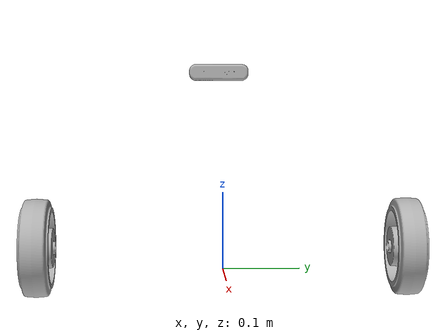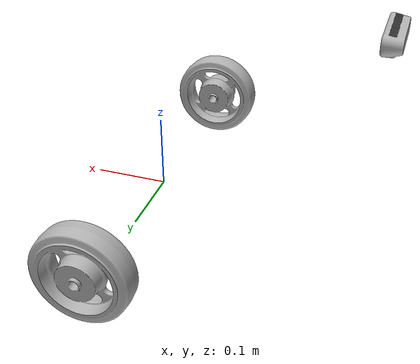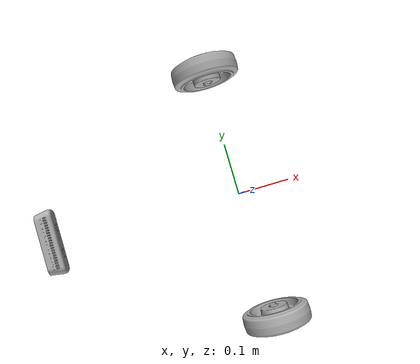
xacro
<?xml version="1.0" ?>
<robot name="robot" xmlns:xacro="http://www.ros.org/wiki/xacro">

<xacro:include filename="$(find robot_description)/urdf/materials.xacro" />
<xacro:include filename="$(find robot_description)/urdf/robot.trans" />
<xacro:include filename="$(find robot_description)/gazebo/robot_plugins.gazebo" />
<link name="base_link">
  <inertial>
    <origin xyz="-0.005302226425128791 -0.0022983537829343297 0.09401485302570205" rpy="0 0 0"/>
    <mass value="24.75013088334115"/>
    <inertia ixx="0.563455" iyy="0.715606" izz="1.030558" ixy="-0.005287" iyz="0.003318" ixz="0.008679"/>
  </inertial>
  <visual>
    <origin xyz="0 0 0" rpy="0 0 0"/>
    <geometry>
      <mesh filename="file://$(find robot_description)/meshes/base_link.stl" scale="0.001 0.001 0.001"/>
    </geometry>
    <material name="silver"/>
  </visual>
  <collision>
    <origin xyz="0 0 0" rpy="0 0 0"/>
    <geometry>
      <mesh filename="file://$(find robot_description)/meshes/base_link.stl" scale="0.001 0.001 0.001"/>
    </geometry>
  </collision>
</link>

<link name="wheel_left_1">
  <inertial>
    <origin xyz="3.828934417079294e-07 -0.023475397336640502 -3.022445128654516e-07" rpy="0 0 0"/>
    <mass value="2.2573668510801816"/>
    <inertia ixx="0.002744" iyy="0.005023" izz="0.002744" ixy="-0.0" iyz="-0.0" ixz="-0.0"/>
  </inertial>
  <visual>
    <origin xyz="0.000385 0.216178 -0.028568" rpy="0 0 0"/>
    <geometry>
      <mesh filename="file://$(find robot_description)/meshes/wheel_left_1.stl" scale="0.001 0.001 0.001"/>
    </geometry>
    <material name="silver"/>
  </visual>
  <collision>
    <origin xyz="0.000385 0.216178 -0.028568" rpy="0 0 0"/>
    <geometry>
      <mesh filename="file://$(find robot_description)/meshes/wheel_left_1.stl" scale="0.001 0.001 0.001"/>
    </geometry>
  </collision>
</link>

<link name="wheel_right_1">
  <inertial>
    <origin xyz="1.5484708396193338e-07 0.023474886620335506 -3.02244513264438e-07" rpy="0 0 0"/>
    <mass value="2.2573668510801825"/>
    <inertia ixx="0.002744" iyy="0.005023" izz="0.002744" ixy="0.0" iyz="-0.0" ixz="-0.0"/>
  </inertial>
  <visual>
    <origin xyz="0.000329 -0.216403 -0.028568" rpy="0 0 0"/>
    <geometry>
      <mesh filename="file://$(find robot_description)/meshes/wheel_right_1.stl" scale="0.001 0.001 0.001"/>
    </geometry>
    <material name="silver"/>
  </visual>
  <collision>
    <origin xyz="0.000329 -0.216403 -0.028568" rpy="0 0 0"/>
    <geometry>
      <mesh filename="file://$(find robot_description)/meshes/wheel_right_1.stl" scale="0.001 0.001 0.001"/>
    </geometry>
  </collision>
</link>

<link name="robot/base_link/realsense">
  <inertial>
    <origin xyz="0.034156087707450974 0.006811411779674115 0.033424133532492684" rpy="0 0 1.57"/>
    <mass value="1.2360865195081703"/>
    <inertia ixx="0.000634" iyy="0.001022" izz="0.001067" ixy="-1e-06" iyz="-0.0" ixz="-0.000132"/>
  </inertial>
  <visual>
    <origin xyz="0.034156087707450974 0.006811411779674115 0.033424133532492684" rpy="0 0 1.57"/>
    <geometry>
      <mesh filename="file://$(find robot_description)/meshes/RealSense_1.stl" scale="0.001 0.001 0.001"/>
    </geometry>
    <material name="silver"/>
  </visual>
  <collision>
    <origin xyz="0.034156087707450974 0.006811411779674115 0.033424133532492684" rpy="0 0 1.57"/>
    <geometry>
      <mesh filename="file://$(find robot_description)/meshes/RealSense_1.stl" scale="0.001 0.001 0.001"/>
    </geometry>
  </collision>
</link>

<link name="camera_L">
</link>

<link name="camera_R">
</link>

<joint name="Revolute 3" type="continuous">
  <origin xyz="-0.000385 -0.216178 0.028568" rpy="0 0 0"/>
  <parent link="base_link"/>
  <child link="wheel_left_1"/>
  <axis xyz="0.0 -1.0 0.0"/>
</joint>

<joint name="Revolute 4" type="continuous">
  <origin xyz="-0.000329 0.216403 0.028568" rpy="0 0 0"/>
  <parent link="base_link"/>
  <child link="wheel_right_1"/>
  <axis xyz="-0.0 -1.0 -0.0"/>
</joint>

<joint name="RealSense" type="fixed">
  <origin xyz="0.0 0.0 0.0" rpy="0 0 0"/>
  <parent link="base_link"/>
  <child link="robot/base_link/realsense"/>
</joint>

<joint name="Camera_R" type="fixed">
  <origin xyz="-0.125858 0.0375 0.146059" rpy="0 0 3.14"/>
  <parent link="robot/base_link/realsense"/>
  <child link="camera_R"/>
</joint>

<joint name="Camera_L" type="fixed">
  <origin xyz="-0.125858 -0.052506 0.146059" rpy="0 0 3.14"/>
  <parent link="robot/base_link/realsense"/>
  <child link="camera_L"/>
</joint>

</robot>

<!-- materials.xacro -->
<robot name="robot" xmlns:xacro="http://www.ros.org/wiki/xacro" >

<material name="silver">
  <color rgba="0.700 0.700 0.700 1.000"/>
</material>

</robot>
